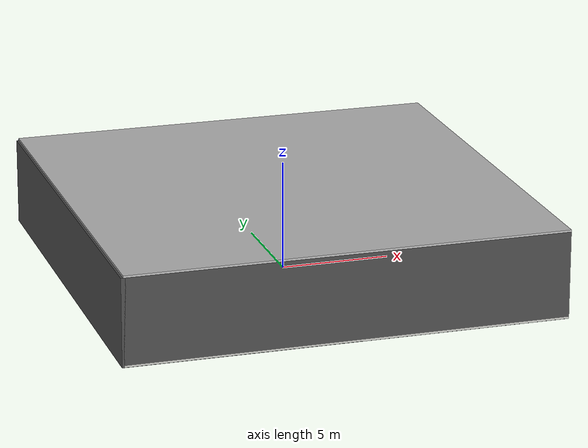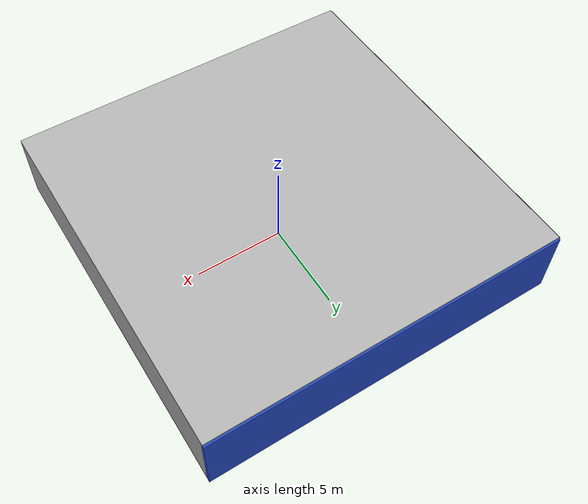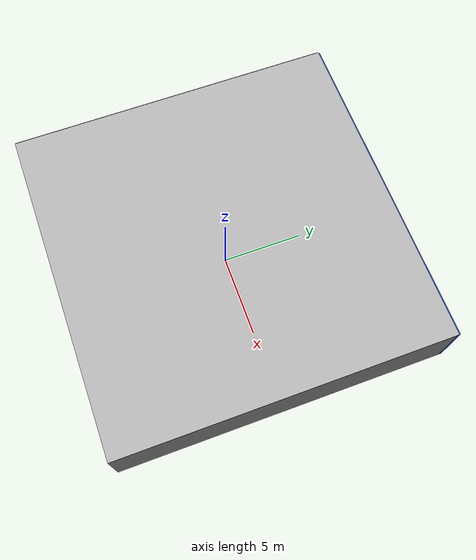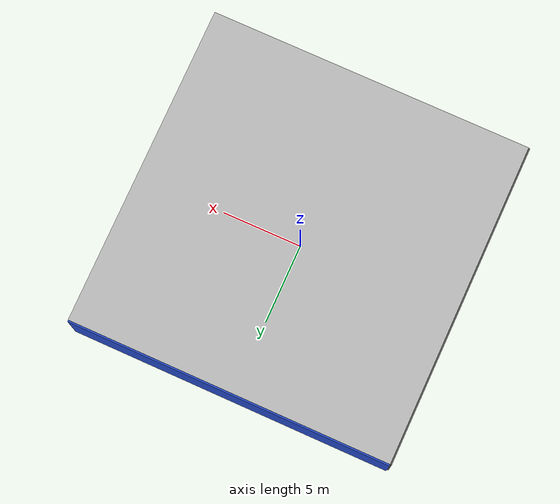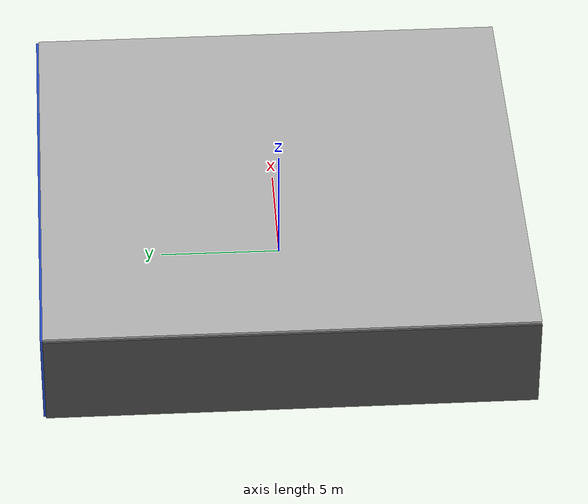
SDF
<sdf version="1.4">
 <world name="default">
  <physics type="ode">
   <max_step_size>0.001</max_step_size>
   <real_time_factor>1</real_time_factor>
   <real_time_update_rate>1000</real_time_update_rate>
   <gravity>0 0 -9.8</gravity>
  </physics>
  <scene><ambient>0.4 0.4 0.4 1</ambient><background>0.7 0.7 0.7 1</background><shadows>1</shadows></scene>
  <model name="Surrounding">
   <static>1</static>
   <link name="Ceiling">
    <collision name="Ceiling_Collision"><geometry><box><size>20 20 0.1</size></box></geometry></collision>
    <visual name="Ceiling_Visual">
     <geometry><box><size>20 20 0.1</size></box></geometry>
     <material>
      <script><uri>file://media/materials/scripts/gazebo.material</uri><name>Gazebo/PioneerBody</name></script>
     </material>
    </visual>
    <pose>0 0 4.05 0 0 0</pose>
   </link>
   <link name="Wall_South">
    <collision name="Wall_South_Collision">
     <geometry><box><size>20 0 4</size></box></geometry>
     <pose>0 0 2 0 -0 0</pose>
    </collision>
    <visual name="Wall_South_Visual">
     <pose>0 0 2 0 -0 0</pose>
     <geometry><box><size>20 0 4</size></box></geometry>
     <material>
      <script><uri>file://media/materials/scripts/gazebo.material</uri><name>Gazebo/DarkGrey</name></script>
     </material>
    </visual>
    <velocity_decay><linear>0</linear><angular>0</angular></velocity_decay>
    <pose>0 -10 0 0 -0 0</pose>
   </link>
   <link name="Wall_East">
    <collision name="Wall_21_Collision">
     <geometry><box><size>20 0 4</size></box></geometry>
     <pose>0 0 2 0 -0 0</pose>
    </collision>
    <visual name="Wall_21_Visual">
     <pose>0 0 2 0 -0 0</pose>
     <geometry><box><size>20 0 4</size></box></geometry>
     <material>
      <script><uri>file://media/materials/scripts/gazebo.material</uri><name>Gazebo/GreyGradientSky</name></script>
     </material>
    </visual>
    <velocity_decay><linear>0</linear><angular>0</angular></velocity_decay>
    <pose>10 0 0 0 -0 1.5708</pose>
   </link>
   <link name="Wall_North">
    <collision name="Wall_22_Collision">
     <geometry><box><size>20 0.2 4</size></box></geometry>
     <pose>0 0 2 0 -0 0</pose>
    </collision>
    <visual name="Wall_22_Visual">
     <pose>0 0 2 0 -0 0</pose>
     <geometry><box><size>20 0.2 4</size></box></geometry>
     <material>
      <script><uri>file://media/materials/scripts/gazebo.material</uri><name>Gazebo/BlueGlow</name></script>
     </material>
    </visual>
    <velocity_decay><linear>0</linear><angular>0</angular></velocity_decay>
    <pose>0 10 0 0 -0 0</pose>
   </link>
   <link name="Wall_West">
    <collision name="Wall_23_Collision">
     <geometry><box><size>20 0.2 4</size></box></geometry>
     <pose>0 0 2 0 -0 0</pose>
    </collision>
    <visual name="Wall_23_Visual">
     <pose>0 0 2 0 -0 0</pose>
     <geometry><box><size>20 0.2 4</size></box></geometry>
     <material>
      <script><uri>file://media/materials/scripts/gazebo.material</uri><name>Gazebo/DarkGrey</name></script>
     </material>
    </visual>
    <velocity_decay><linear>0</linear><angular>0</angular></velocity_decay>
    <pose>-10 0 0 0 0 -1.5708</pose>
   </link>
   <link name="Ground_link">
    <collision name="collision">
     <pose>0 0 .05 0 -0 0</pose>
     <geometry><box><size>20 20 0.1</size></box></geometry>
    </collision>
    <visual name="visual">
     <pose>0 0 .05 0 -0 0</pose>
     <geometry><box><size>20 20 0.1</size></box></geometry>
     <material>
      <script><uri>file://media/materials/scripts/gazebo.material</uri><name>Gazebo/CeilingTiled</name></script>
     </material>
    </visual>
   </link>
   <static>1</static>
  </model>
  <spherical_coordinates>
   <surface_model>EARTH_WGS84</surface_model>
   <latitude_deg>0</latitude_deg>
   <longitude_deg>0</longitude_deg>
   <elevation>0</elevation>
   <heading_deg>0</heading_deg>
  </spherical_coordinates>
  <light name="lightball_0" type="diffuse">
   <diffuse>0.8 0.8 0.8 1</diffuse>
   <specular>0.2 0.2 0.2 1</specular>
   <attenuation>
    <range>100</range>
    <constant>0.7</constant>
    <linear>0.01</linear>
    <quadratic>0.001</quadratic>
   </attenuation>
   <direction>-0.5 0.1 -0.9</direction>
   <pose>4.92609226322 1.2745848496 2.41502507155 0 0 0</pose>
  </light>
  <light name="lightball_1" type="diffuse">
   <diffuse>0.8 0.8 0.8 1</diffuse>
   <specular>0.2 0.2 0.2 1</specular>
   <attenuation>
    <range>100</range>
    <constant>0.7</constant>
    <linear>0.01</linear>
    <quadratic>0.001</quadratic>
   </attenuation>
   <direction>-0.5 0.1 -0.9</direction>
   <pose>-4.82097966626 -8.22818656431 2.03360644341 0 0 0</pose>
  </light>
  <light name="lightball_2" type="diffuse">
   <diffuse>0.8 0.8 0.8 1</diffuse>
   <specular>0.2 0.2 0.2 1</specular>
   <attenuation>
    <range>100</range>
    <constant>0.7</constant>
    <linear>0.01</linear>
    <quadratic>0.001</quadratic>
   </attenuation>
   <direction>-0.5 0.1 -0.9</direction>
   <pose>1.952926276 6.62220038689 1.2969178489 0 0 0</pose>
  </light>
  <light name="lightball_3" type="diffuse">
   <diffuse>0.8 0.8 0.8 1</diffuse>
   <specular>0.2 0.2 0.2 1</specular>
   <attenuation>
    <range>100</range>
    <constant>0.7</constant>
    <linear>0.01</linear>
    <quadratic>0.001</quadratic>
   </attenuation>
   <direction>-0.5 0.1 -0.9</direction>
   <pose>-4.14404199719 -1.56318466177 3.33337350968 0 0 0</pose>
  </light>
  <light name="lightball_4" type="diffuse">
   <diffuse>0.8 0.8 0.8 1</diffuse>
   <specular>0.2 0.2 0.2 1</specular>
   <attenuation>
    <range>100</range>
    <constant>0.7</constant>
    <linear>0.01</linear>
    <quadratic>0.001</quadratic>
   </attenuation>
   <direction>-0.5 0.1 -0.9</direction>
   <pose>1.58204997518 -7.96122309231 3.31383056688 0 0 0</pose>
  </light>
  <light name="lightball_5" type="diffuse">
   <diffuse>0.8 0.8 0.8 1</diffuse>
   <specular>0.2 0.2 0.2 1</specular>
   <attenuation>
    <range>100</range>
    <constant>0.7</constant>
    <linear>0.01</linear>
    <quadratic>0.001</quadratic>
   </attenuation>
   <direction>-0.5 0.1 -0.9</direction>
   <pose>-5.45699533667 -0.890685290217 1.53630400921 0 0 0</pose>
  </light>
  <light name="lightball_6" type="diffuse">
   <diffuse>0.8 0.8 0.8 1</diffuse>
   <specular>0.2 0.2 0.2 1</specular>
   <attenuation>
    <range>100</range>
    <constant>0.7</constant>
    <linear>0.01</linear>
    <quadratic>0.001</quadratic>
   </attenuation>
   <direction>-0.5 0.1 -0.9</direction>
   <pose>-7.61781988157 1.13505150193 0.929856784141 0 0 0</pose>
  </light>
  <light name="lightball_7" type="diffuse">
   <diffuse>0.8 0.8 0.8 1</diffuse>
   <specular>0.2 0.2 0.2 1</specular>
   <attenuation>
    <range>100</range>
    <constant>0.7</constant>
    <linear>0.01</linear>
    <quadratic>0.001</quadratic>
   </attenuation>
   <direction>-0.5 0.1 -0.9</direction>
   <pose>-1.40831359661 2.11745803992 3.23789403042 0 0 0</pose>
  </light>
  <light name="lightball_8" type="diffuse">
   <diffuse>0.8 0.8 0.8 1</diffuse>
   <specular>0.2 0.2 0.2 1</specular>
   <attenuation>
    <range>100</range>
    <constant>0.7</constant>
    <linear>0.01</linear>
    <quadratic>0.001</quadratic>
   </attenuation>
   <direction>-0.5 0.1 -0.9</direction>
   <pose>-1.83252166869 -2.03733505912 1.16137239279 0 0 0</pose>
  </light>
  <include><uri>model://table</uri><pose>-7.53262734966 -1.4368373246 0 0 0 1.53949782895</pose></include>
  <include><uri>model://cabinet</uri><pose>-8.09765830804 7.05379139906 0 0 0 0.0558327078871</pose></include>
  <include>
   <uri>model://construction_cone</uri>
   <pose>1.16473055996 4.36932510039 0 0 0 0.770665014522</pose>
  </include>
 </world>
</sdf>

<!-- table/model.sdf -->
<sdf version="1.5">
  <model name="table">
    <static>true</static>
    <link name="link">
      <collision name="surface">
        <pose>0 0 1.0 0 0 0</pose>
        <geometry>
          <box>
            <size>1.5 0.8 0.03</size>
          </box>
        </geometry>
        <surface>
          <friction>
            <ode>
              <mu>0.6</mu>
              <mu2>0.6</mu2>
            </ode>
          </friction>
        </surface>
      </collision>
      <visual name="visual1">
        <pose>0 0 1.0 0 0 0</pose>
        <geometry>
          <box>
            <size>1.5 0.8 0.03</size>
          </box>
        </geometry>
        <material>
          <script>
            <uri>model://media/materials/scripts/gazebo.material</uri>
            <name>Gazebo/Wood</name>
          </script>
        </material>
      </visual>
      <collision name="front_left_leg">
        <pose>0.68 0.38 0.5 0 0 0</pose>
        <geometry>
          <cylinder>
            <radius>0.02</radius>
            <length>1.0</length>
          </cylinder>
        </geometry>
      </collision>
      <visual name="front_left_leg">
        <pose>0.68 0.38 0.5 0 0 0</pose>
        <geometry>
          <cylinder>
            <radius>0.02</radius>
            <length>1.0</length>
          </cylinder>
        </geometry>
        <material>
          <script>
            <uri>model://media/materials/scripts/gazebo.material</uri>
            <name>Gazebo/Grey</name>
          </script>
        </material>
      </visual>
      <collision name="front_right_leg">
        <pose>0.68 -0.38 0.5 0 0 0</pose>
        <geometry>
          <cylinder>
            <radius>0.02</radius>
            <length>1.0</length>
          </cylinder>
        </geometry>
      </collision>
      <visual name="front_right_leg">
        <pose>0.68 -0.38 0.5 0 0 0</pose>
        <geometry>
          <cylinder>
            <radius>0.02</radius>
            <length>1.0</length>
          </cylinder>
        </geometry>
        <material>
          <script>
            <uri>model://media/materials/scripts/gazebo.material</uri>
            <name>Gazebo/Grey</name>
          </script>
        </material>
      </visual>
      <collision name="back_right_leg">
        <pose>-0.68 -0.38 0.5 0 0 0</pose>
        <geometry>
          <cylinder>
            <radius>0.02</radius>
            <length>1.0</length>
          </cylinder>
        </geometry>
      </collision>
      <visual name="back_right_leg">
        <pose>-0.68 -0.38 0.5 0 0 0</pose>
        <geometry>
          <cylinder>
            <radius>0.02</radius>
            <length>1.0</length>
          </cylinder>
        </geometry>
        <material>
          <script>
            <uri>model://media/materials/scripts/gazebo.material</uri>
            <name>Gazebo/Grey</name>
          </script>
        </material>
      </visual>
      <collision name="back_left_leg">
        <pose>-0.68 0.38 0.5 0 0 0</pose>
        <geometry>
          <cylinder>
            <radius>0.02</radius>
            <length>1.0</length>
          </cylinder>
        </geometry>
      </collision>
      <visual name="back_left_leg">
        <pose>-0.68 0.38 0.5 0 0 0</pose>
        <geometry>
          <cylinder>
            <radius>0.02</radius>
            <length>1.0</length>
          </cylinder>
        </geometry>
        <material>
          <script>
            <uri>model://media/materials/scripts/gazebo.material</uri>
            <name>Gazebo/Grey</name>
          </script>
        </material>
      </visual>
    </link>
  </model>
</sdf>

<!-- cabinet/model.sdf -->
<sdf version="1.5">
  <model name="cabinet">
    <static>true</static>
    <link name="cabinet_bottom_plate">
      <inertial>
        <pose>0 0 -1 0 0 0</pose>
        <inertia>
          <ixx>2.050000</ixx>
          <ixy>0</ixy>
          <ixz>0</ixz>
          <iyy>2.050000</iyy>
          <iyz>0</iyz>
          <izz>2.050000</izz>
        </inertia>
        <mass>25.000000</mass>
      </inertial>
      <collision name="cabinet_bottom_plate_geom">
        <pose>0 0 0.010000 0 0 0</pose>
        <geometry>
          <box>
            <size>0.450000 0.450000 0.020000</size>
          </box>
        </geometry>
      </collision>
      <visual name="cabinet_bottom_plate_geom_visual">
        <pose>0 0 0.010000 0 0 0</pose>
        <geometry>
          <box>
            <size>0.450000 0.450000 0.020000</size>
          </box>
        </geometry>
        <material>
          <script>
            <uri>model://media/materials/scripts/gazebo.material</uri>
            <name>Gazebo/Wood</name>
          </script>
        </material>
      </visual>
      <collision name="cabinet_bottom_plate_geom_cabinet_back_plate">
        <pose>0.235000 0 0.510000 0 0 0</pose>
        <geometry>
          <box>
            <size>0.020000 0.450000 1.020000</size>
          </box>
        </geometry>
      </collision>
      <visual name="cabinet_bottom_plate_geom_cabinet_back_plate_visual">
        <pose>0.235000 0 0.510000 0 0 0</pose>
        <geometry>
          <box>
            <size>0.020000 0.450000 1.020000</size>
          </box>
        </geometry>
        <material>
          <script>
            <uri>model://media/materials/scripts/gazebo.material</uri>
            <name>Gazebo/Wood</name>
          </script>
        </material>
      </visual>
      <collision name="cabinet_bottom_plate_geom_cabinet_left_plate">
        <pose>0 0.235000 0.510000 0 0 0</pose>
        <geometry>
          <box>
            <size>0.450000 0.020000 1.020000</size>
          </box>
        </geometry>
      </collision>
      <visual name="cabinet_bottom_plate_geom_cabinet_left_plate_visual">
        <pose>0 0.235000 0.510000 0 0 0</pose>
        <geometry>
          <box>
            <size>0.450000 0.020000 1.020000</size>
          </box>
        </geometry>
        <material>
          <script>
            <uri>model://media/materials/scripts/gazebo.material</uri>
            <name>Gazebo/Wood</name>
          </script>
        </material>
      </visual>
      <collision name="cabinet_bottom_plate_geom_cabinet_middle_plate">
        <pose>0 0 0.510000 0 0 0</pose>
        <geometry>
          <box>
            <size>0.450000 0.450000 0.020000</size>
          </box>
        </geometry>
      </collision>
      <visual name="cabinet_bottom_plate_geom_cabinet_middle_plate_visual">
        <pose>0 0 0.510000 0 0 0</pose>
        <geometry>
          <box>
            <size>0.450000 0.450000 0.020000</size>
          </box>
        </geometry>
        <material>
          <script>
            <uri>model://media/materials/scripts/gazebo.material</uri>
            <name>Gazebo/Wood</name>
          </script>
        </material>
      </visual>
      <collision name="cabinet_bottom_plate_geom_cabinet_right_plate">
        <pose>0 -0.235000 0.510000 0 0 0</pose>
        <geometry>
          <box>
            <size>0.450000 0.020000 1.020000</size>
          </box>
        </geometry>
      </collision>
      <visual name="cabinet_bottom_plate_geom_cabinet_right_plate_visual">
        <pose>0 -0.235000 0.510000 0 0 0</pose>
        <geometry>
          <box>
            <size>0.450000 0.020000 1.020000</size>
          </box>
        </geometry>
        <material>
          <script>
            <uri>model://media/materials/scripts/gazebo.material</uri>
            <name>Gazebo/Wood</name>
          </script>
        </material>
      </visual>
      <collision name="cabinet_bottom_plate_geom_cabinet_top_plate">
        <pose>0 0 1.010000 0 0 0</pose>
        <geometry>
          <box>
            <size>0.450000 0.450000 0.020000</size>
          </box>
        </geometry>
      </collision>
      <visual name="cabinet_bottom_plate_geom_cabinet_top_plate_visual">
        <pose>0 0 1.010000 0 0 0</pose>
        <geometry>
          <box>
            <size>0.450000 0.450000 0.020000</size>
          </box>
        </geometry>
        <material>
          <script>
            <uri>model://media/materials/scripts/gazebo.material</uri>
            <name>Gazebo/Wood</name>
          </script>
        </material>
      </visual>
    </link>
  </model>
</sdf>

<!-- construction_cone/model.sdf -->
<sdf version="1.5">
  <model name="Construction Cone">
    <link name="link">
      <collision name="collision">
        <geometry>
          <mesh>
            <scale>10 10 10</scale>
            <uri>file://isr-testbed/construction_cone/meshes/construction_cone.dae</uri>
          </mesh>
        </geometry>
      </collision>
      <visual name="visual">
        <geometry>
          <mesh>
            <scale>10 10 10</scale>
            <uri>file://isr-testbed/construction_cone/meshes/construction_cone.dae</uri>
          </mesh>
        </geometry>
      </visual>
    </link>
  </model>
</sdf>
